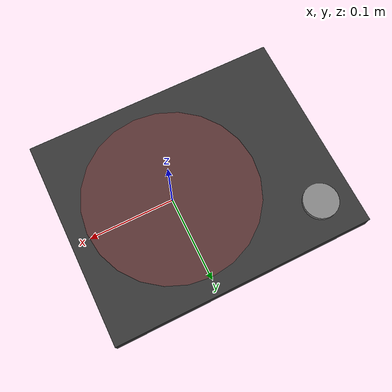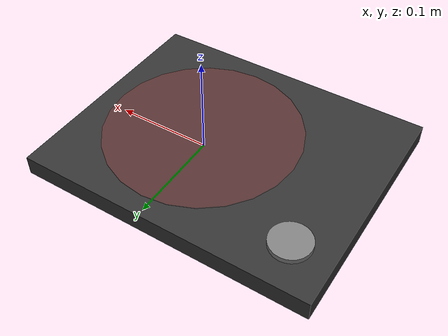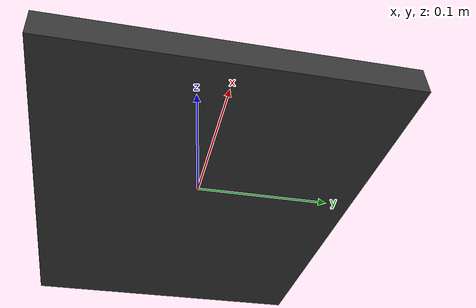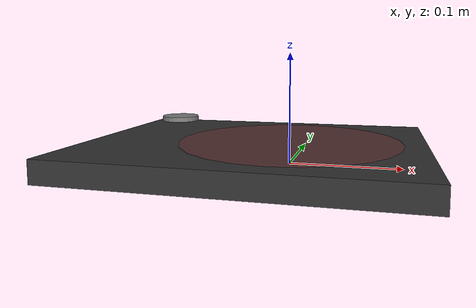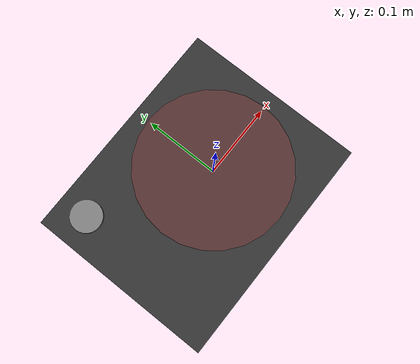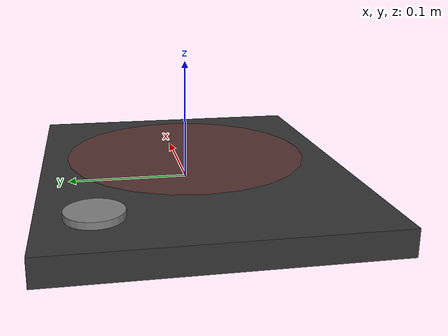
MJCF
<?xml version="1.0" encoding="utf-8"?>
<!-- from https://github.com/vikashplus/mj_envs/tree/master/mj_envs/hand_manipulation_suite/assets -->
<!-- Information about door can be found in this paper: https://arxiv.org/pdf/1709.10087.pdf -->

<mujoco model="stove">
    <texture file="../textures/brass-ambra.png" type="cube" name="metal" />
    <material name="MatMetal" texture="metal" specular="1" shininess="0.3" rgba="0.9 0.9 0.9 1" />

    <worldbody>
      <body>
        <body name="object">
          <site name="origin" pos="0 0 0" rgba="0 0 0 0" size="0.005"/>
          <geom name='body'
            pos="-0.03 0.0 0.01" size="0.15 0.12 0.01" type="box"
            group="0" friction="1 1 1"
            rgba="0 0 0 0"
            />
          <geom name='geom_body_visual'
            pos="-0.03 0.0 0.01" size="0.15 0.12 0.01" type="box"
            group="1" contype="0" conaffinity="0"
            rgba="0.2 0.2 0.2 1"
            />
          <geom name='geom_heat_visual'
            pos="0 0.0 0.0205" size="0.1 0.0005" type="cylinder"
            group="1" contype="0" conaffinity="0"
            rgba="0.9 0.2 0.2 0.1"
            />

          <body name="button" pos="-0.14 0.08 0.02">
            <inertial pos="0 0 0" mass="0.001" diaginertia="0.001 0.001 0.001" />
            <geom name='geom_button'
              pos="0 0 0.0075" size="0.02 0.0025" type="cylinder"
              group="0" friction="1 1 1"
              />
            <geom name='geom_button_visual'
              pos="0 0 0.0075" size="0.02 0.0025" type="cylinder"
              group="1" contype="0" conaffinity="0"
              rgba="0.2 0.2 0.2 1"
              />

          </body>

        </body>
        <site name="bottom_site" pos="0 0 -0.0207" rgba="0 0 0 0" size="0.005"/>
        <site name="top_site" pos="0 0 0.007" rgba="0 0 0 0" size="0.005"/>
        <site name="horizontal_radius_site" pos="0 0 0" rgba="0 0 0 0" size="0.003"/>
      </body>

    </worldbody>
</mujoco>
